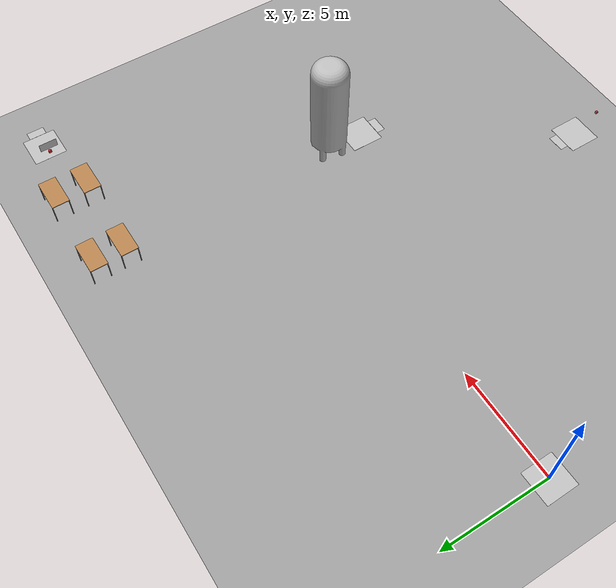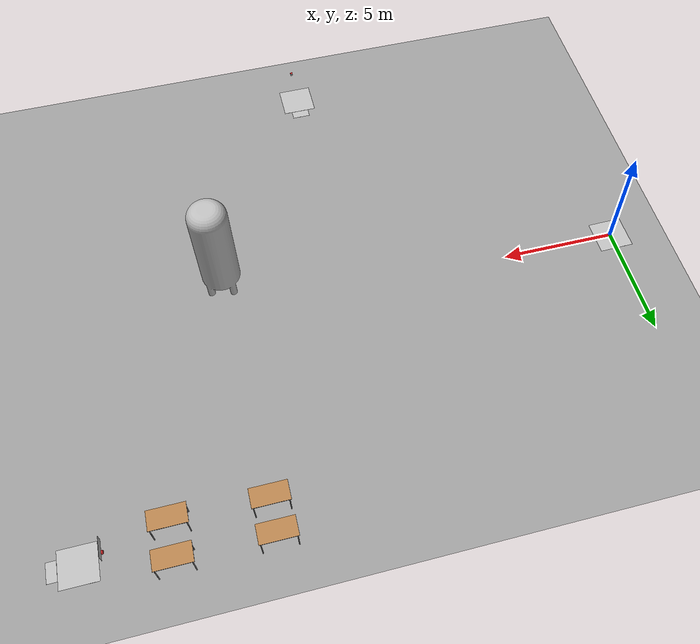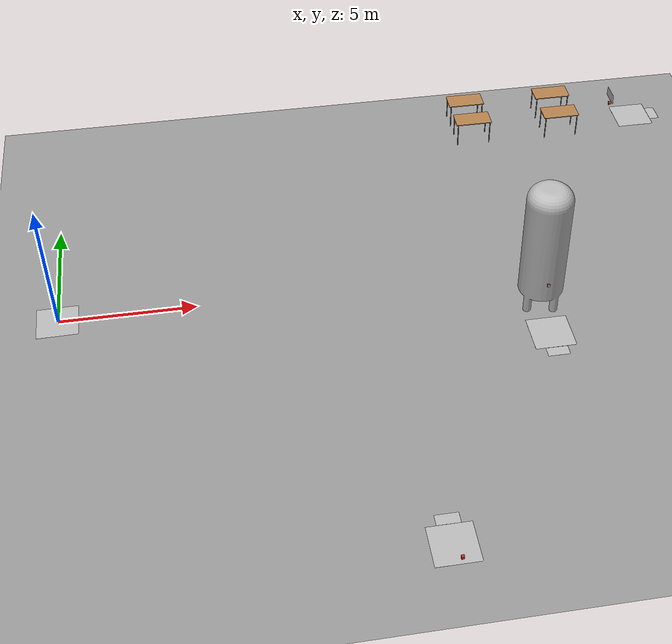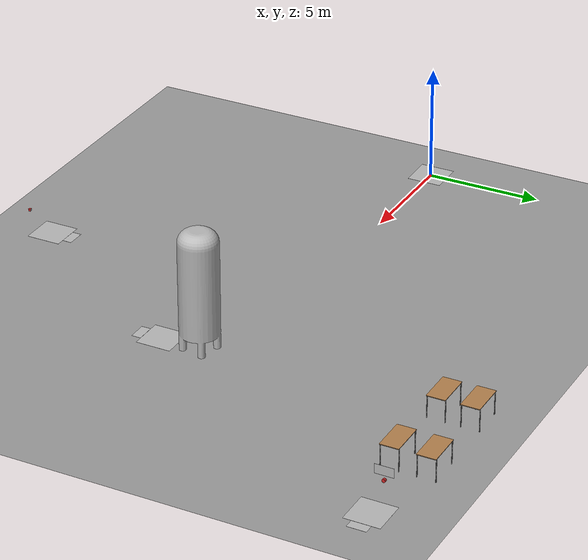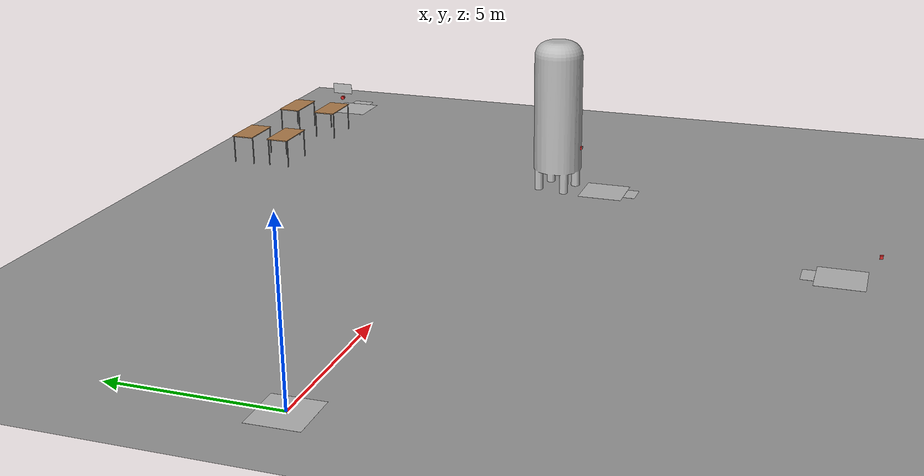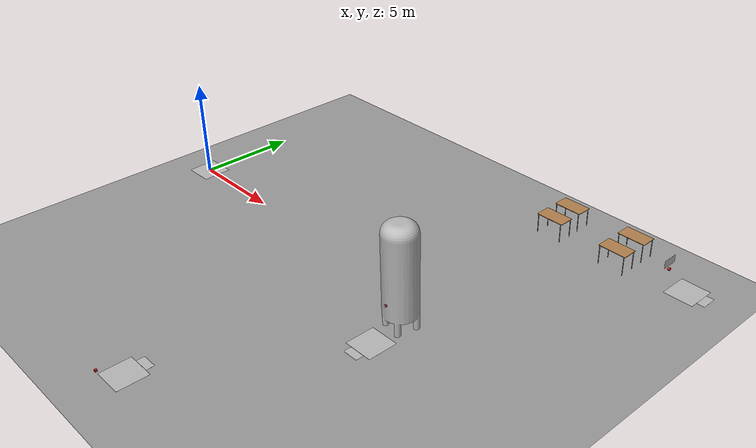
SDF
<sdf version="1.6">
 <world name="default">
  <model name="v1301">
   <link name="v1301">
    <inertial>
     <pose>-0 -2.1428 -8e-06 0 -0 0</pose>
     <mass>9579.6</mass>
     <inertia>
      <ixx>17997.8</ixx>
      <ixy>-4.99284e-13</ixy>
      <ixz>-3.51778e-15</ixz>
      <iyy>3237.68</iyy>
      <iyz>0.189116</iyz>
      <izz>17997.9</izz>
     </inertia>
    </inertial>
    <collision name="v1301_collision">
     <pose>0 0 0 1.5708 -0 0</pose>
     <geometry><mesh><scale>1 1 1</scale><uri>model://v1301/meshes/v1301.STL</uri></mesh></geometry>
    </collision>
    <visual name="v1301_visual">
     <pose>0 0 0 1.5708 -0 0</pose>
     <geometry><mesh><scale>1 1 1</scale><uri>model://v1301/meshes/v1301.STL</uri></mesh></geometry>
    </visual>
    <velocity_decay><linear>0</linear><angular>0</angular></velocity_decay>
   </link>
   <pose>17.4218 -1.74124 0.699995 -1.5708 6e-06 -0.971671</pose>
   <static>1</static>
  </model>
  <model name="ground_plane_2">
   <static>1</static>
   <link name="link">
    <collision name="collision">
     <geometry><plane><normal>0 0 1</normal><size>100 100</size></plane></geometry>
     <surface><friction><ode><mu>100</mu><mu2>50</mu2></ode></friction></surface>
    </collision>
    <visual name="visual">
     <cast_shadows>0</cast_shadows>
     <geometry><plane><normal>0 0 1</normal><size>100 100</size></plane></geometry>
     <material>
      <script><uri>file://media/materials/scripts/gazebo.material</uri><name>Gazebo/Grey</name></script>
     </material>
    </visual>
    <velocity_decay><linear>0</linear><angular>0</angular></velocity_decay>
   </link>
  </model>
  <model name="table">
   <static>1</static>
   <link name="link">
    <collision name="surface">
     <pose>0 0 1 0 -0 0</pose>
     <geometry><box><size>1.5 0.8 0.03</size></box></geometry>
     <surface><friction><ode><mu>0.6</mu><mu2>0.6</mu2></ode></friction></surface>
    </collision>
    <visual name="visual1">
     <pose>0 0 1 0 -0 0</pose>
     <geometry><box><size>1.5 0.8 0.03</size></box></geometry>
     <material>
      <script><uri>file://media/materials/scripts/gazebo.material</uri><name>Gazebo/Wood</name></script>
     </material>
    </visual>
    <collision name="front_left_leg">
     <pose>0.68 0.38 0.5 0 -0 0</pose>
     <geometry><cylinder><radius>0.02</radius><length>1</length></cylinder></geometry>
    </collision>
    <visual name="front_left_leg">
     <pose>0.68 0.38 0.5 0 -0 0</pose>
     <geometry><cylinder><radius>0.02</radius><length>1</length></cylinder></geometry>
     <material>
      <script><uri>file://media/materials/scripts/gazebo.material</uri><name>Gazebo/Grey</name></script>
     </material>
    </visual>
    <collision name="front_right_leg">
     <pose>0.68 -0.38 0.5 0 -0 0</pose>
     <geometry><cylinder><radius>0.02</radius><length>1</length></cylinder></geometry>
    </collision>
    <visual name="front_right_leg">
     <pose>0.68 -0.38 0.5 0 -0 0</pose>
     <geometry><cylinder><radius>0.02</radius><length>1</length></cylinder></geometry>
     <material>
      <script><uri>file://media/materials/scripts/gazebo.material</uri><name>Gazebo/Grey</name></script>
     </material>
    </visual>
    <collision name="back_right_leg">
     <pose>-0.68 -0.38 0.5 0 -0 0</pose>
     <geometry><cylinder><radius>0.02</radius><length>1</length></cylinder></geometry>
    </collision>
    <visual name="back_right_leg">
     <pose>-0.68 -0.38 0.5 0 -0 0</pose>
     <geometry><cylinder><radius>0.02</radius><length>1</length></cylinder></geometry>
     <material>
      <script><uri>file://media/materials/scripts/gazebo.material</uri><name>Gazebo/Grey</name></script>
     </material>
    </visual>
    <collision name="back_left_leg">
     <pose>-0.68 0.38 0.5 0 -0 0</pose>
     <geometry><cylinder><radius>0.02</radius><length>1</length></cylinder></geometry>
    </collision>
    <visual name="back_left_leg">
     <pose>-0.68 0.38 0.5 0 -0 0</pose>
     <geometry><cylinder><radius>0.02</radius><length>1</length></cylinder></geometry>
     <material>
      <script><uri>file://media/materials/scripts/gazebo.material</uri><name>Gazebo/Grey</name></script>
     </material>
    </visual>
    <velocity_decay><linear>0</linear><angular>0</angular></velocity_decay>
   </link>
   <pose>17.2061 10.0068 0 0 -0 0</pose>
  </model>
  <model name="table_0">
   <static>1</static>
   <link name="link">
    <collision name="surface">
     <pose>0 0 1 0 -0 0</pose>
     <geometry><box><size>1.5 0.8 0.03</size></box></geometry>
     <surface><friction><ode><mu>0.6</mu><mu2>0.6</mu2></ode></friction></surface>
    </collision>
    <visual name="visual1">
     <pose>0 0 1 0 -0 0</pose>
     <geometry><box><size>1.5 0.8 0.03</size></box></geometry>
     <material>
      <script><uri>file://media/materials/scripts/gazebo.material</uri><name>Gazebo/Wood</name></script>
     </material>
    </visual>
    <collision name="front_left_leg">
     <pose>0.68 0.38 0.5 0 -0 0</pose>
     <geometry><cylinder><radius>0.02</radius><length>1</length></cylinder></geometry>
    </collision>
    <visual name="front_left_leg">
     <pose>0.68 0.38 0.5 0 -0 0</pose>
     <geometry><cylinder><radius>0.02</radius><length>1</length></cylinder></geometry>
     <material>
      <script><uri>file://media/materials/scripts/gazebo.material</uri><name>Gazebo/Grey</name></script>
     </material>
    </visual>
    <collision name="front_right_leg">
     <pose>0.68 -0.38 0.5 0 -0 0</pose>
     <geometry><cylinder><radius>0.02</radius><length>1</length></cylinder></geometry>
    </collision>
    <visual name="front_right_leg">
     <pose>0.68 -0.38 0.5 0 -0 0</pose>
     <geometry><cylinder><radius>0.02</radius><length>1</length></cylinder></geometry>
     <material>
      <script><uri>file://media/materials/scripts/gazebo.material</uri><name>Gazebo/Grey</name></script>
     </material>
    </visual>
    <collision name="back_right_leg">
     <pose>-0.68 -0.38 0.5 0 -0 0</pose>
     <geometry><cylinder><radius>0.02</radius><length>1</length></cylinder></geometry>
    </collision>
    <visual name="back_right_leg">
     <pose>-0.68 -0.38 0.5 0 -0 0</pose>
     <geometry><cylinder><radius>0.02</radius><length>1</length></cylinder></geometry>
     <material>
      <script><uri>file://media/materials/scripts/gazebo.material</uri><name>Gazebo/Grey</name></script>
     </material>
    </visual>
    <collision name="back_left_leg">
     <pose>-0.68 0.38 0.5 0 -0 0</pose>
     <geometry><cylinder><radius>0.02</radius><length>1</length></cylinder></geometry>
    </collision>
    <visual name="back_left_leg">
     <pose>-0.68 0.38 0.5 0 -0 0</pose>
     <geometry><cylinder><radius>0.02</radius><length>1</length></cylinder></geometry>
     <material>
      <script><uri>file://media/materials/scripts/gazebo.material</uri><name>Gazebo/Grey</name></script>
     </material>
    </visual>
    <velocity_decay><linear>0</linear><angular>0</angular></velocity_decay>
   </link>
   <pose>21 10 0 0 -0 0</pose>
  </model>
  <model name="table_1">
   <static>1</static>
   <link name="link">
    <collision name="surface">
     <pose>0 0 1 0 -0 0</pose>
     <geometry><box><size>1.5 0.8 0.03</size></box></geometry>
     <surface><friction><ode><mu>0.6</mu><mu2>0.6</mu2></ode></friction></surface>
    </collision>
    <visual name="visual1">
     <pose>0 0 1 0 -0 0</pose>
     <geometry><box><size>1.5 0.8 0.03</size></box></geometry>
     <material>
      <script><uri>file://media/materials/scripts/gazebo.material</uri><name>Gazebo/Wood</name></script>
     </material>
    </visual>
    <collision name="front_left_leg">
     <pose>0.68 0.38 0.5 0 -0 0</pose>
     <geometry><cylinder><radius>0.02</radius><length>1</length></cylinder></geometry>
    </collision>
    <visual name="front_left_leg">
     <pose>0.68 0.38 0.5 0 -0 0</pose>
     <geometry><cylinder><radius>0.02</radius><length>1</length></cylinder></geometry>
     <material>
      <script><uri>file://media/materials/scripts/gazebo.material</uri><name>Gazebo/Grey</name></script>
     </material>
    </visual>
    <collision name="front_right_leg">
     <pose>0.68 -0.38 0.5 0 -0 0</pose>
     <geometry><cylinder><radius>0.02</radius><length>1</length></cylinder></geometry>
    </collision>
    <visual name="front_right_leg">
     <pose>0.68 -0.38 0.5 0 -0 0</pose>
     <geometry><cylinder><radius>0.02</radius><length>1</length></cylinder></geometry>
     <material>
      <script><uri>file://media/materials/scripts/gazebo.material</uri><name>Gazebo/Grey</name></script>
     </material>
    </visual>
    <collision name="back_right_leg">
     <pose>-0.68 -0.38 0.5 0 -0 0</pose>
     <geometry><cylinder><radius>0.02</radius><length>1</length></cylinder></geometry>
    </collision>
    <visual name="back_right_leg">
     <pose>-0.68 -0.38 0.5 0 -0 0</pose>
     <geometry><cylinder><radius>0.02</radius><length>1</length></cylinder></geometry>
     <material>
      <script><uri>file://media/materials/scripts/gazebo.material</uri><name>Gazebo/Grey</name></script>
     </material>
    </visual>
    <collision name="back_left_leg">
     <pose>-0.68 0.38 0.5 0 -0 0</pose>
     <geometry><cylinder><radius>0.02</radius><length>1</length></cylinder></geometry>
    </collision>
    <visual name="back_left_leg">
     <pose>-0.68 0.38 0.5 0 -0 0</pose>
     <geometry><cylinder><radius>0.02</radius><length>1</length></cylinder></geometry>
     <material>
      <script><uri>file://media/materials/scripts/gazebo.material</uri><name>Gazebo/Grey</name></script>
     </material>
    </visual>
    <velocity_decay><linear>0</linear><angular>0</angular></velocity_decay>
   </link>
   <pose>21 8.51656 0 0 -0 0</pose>
  </model>
  <model name="table_2">
   <static>1</static>
   <link name="link">
    <collision name="surface">
     <pose>0 0 1 0 -0 0</pose>
     <geometry><box><size>1.5 0.8 0.03</size></box></geometry>
     <surface><friction><ode><mu>0.6</mu><mu2>0.6</mu2></ode></friction></surface>
    </collision>
    <visual name="visual1">
     <pose>0 0 1 0 -0 0</pose>
     <geometry><box><size>1.5 0.8 0.03</size></box></geometry>
     <material>
      <script><uri>file://media/materials/scripts/gazebo.material</uri><name>Gazebo/Wood</name></script>
     </material>
    </visual>
    <collision name="front_left_leg">
     <pose>0.68 0.38 0.5 0 -0 0</pose>
     <geometry><cylinder><radius>0.02</radius><length>1</length></cylinder></geometry>
    </collision>
    <visual name="front_left_leg">
     <pose>0.68 0.38 0.5 0 -0 0</pose>
     <geometry><cylinder><radius>0.02</radius><length>1</length></cylinder></geometry>
     <material>
      <script><uri>file://media/materials/scripts/gazebo.material</uri><name>Gazebo/Grey</name></script>
     </material>
    </visual>
    <collision name="front_right_leg">
     <pose>0.68 -0.38 0.5 0 -0 0</pose>
     <geometry><cylinder><radius>0.02</radius><length>1</length></cylinder></geometry>
    </collision>
    <visual name="front_right_leg">
     <pose>0.68 -0.38 0.5 0 -0 0</pose>
     <geometry><cylinder><radius>0.02</radius><length>1</length></cylinder></geometry>
     <material>
      <script><uri>file://media/materials/scripts/gazebo.material</uri><name>Gazebo/Grey</name></script>
     </material>
    </visual>
    <collision name="back_right_leg">
     <pose>-0.68 -0.38 0.5 0 -0 0</pose>
     <geometry><cylinder><radius>0.02</radius><length>1</length></cylinder></geometry>
    </collision>
    <visual name="back_right_leg">
     <pose>-0.68 -0.38 0.5 0 -0 0</pose>
     <geometry><cylinder><radius>0.02</radius><length>1</length></cylinder></geometry>
     <material>
      <script><uri>file://media/materials/scripts/gazebo.material</uri><name>Gazebo/Grey</name></script>
     </material>
    </visual>
    <collision name="back_left_leg">
     <pose>-0.68 0.38 0.5 0 -0 0</pose>
     <geometry><cylinder><radius>0.02</radius><length>1</length></cylinder></geometry>
    </collision>
    <visual name="back_left_leg">
     <pose>-0.68 0.38 0.5 0 -0 0</pose>
     <geometry><cylinder><radius>0.02</radius><length>1</length></cylinder></geometry>
     <material>
      <script><uri>file://media/materials/scripts/gazebo.material</uri><name>Gazebo/Grey</name></script>
     </material>
    </visual>
    <velocity_decay><linear>0</linear><angular>0</angular></velocity_decay>
   </link>
   <pose>17.2213 8.61105 0 0 -0 0</pose>
  </model>
  <model name="yibiao11">
   <link name="link">
    <pose>0 0.05 0.05 0 -0 0</pose>
    <inertial>
     <mass>0.001</mass>
     <inertia><ixx>0.00058</ixx><ixy>0</ixy><ixz>0</ixz><iyy>0.00058</iyy><iyz>0</iyz><izz>0.00019</izz></inertia>
    </inertial>
    <collision name="collision"><geometry><box><size>0.1 0.001 0.1</size></box></geometry></collision>
    <visual name="visual">
     <geometry><box><size>0.1 0.001 0.1</size></box></geometry>
     <material>
      <script>
       <uri>model://yibiao11/materials/scripts</uri>
       <uri>model://yibiao11/materials/textures</uri>
       <name>yibiao11/Diffuse</name>
      </script>
     </material>
    </visual>
   </link>
   <link name="base">
    <pose>0 0 0.05 0 -0 0</pose>
    <inertial>
     <mass>0.39</mass>
     <inertia><ixx>0.00058</ixx><ixy>0</ixy><ixz>0</ixz><iyy>0.00058</iyy><iyz>0</iyz><izz>0.00019</izz></inertia>
    </inertial>
    <collision name="collision"><geometry><box><size>0.1 0.1 0.1</size></box></geometry></collision>
    <visual name="visual">
     <geometry><box><size>0.1 0.1 0.1</size></box></geometry>
     <material>
      <script><uri>file://media/materials/scripts/gazebo.material</uri><name>Gazebo/Red</name></script>
     </material>
    </visual>
   </link>
   <pose>12.0592 -12.9038 0.767058 0 -2e-06 0</pose>
   <static>1</static>
  </model>
  <model name="yibiao22">
   <link name="link">
    <pose>0 0.05 0.05 0 -0 0</pose>
    <inertial>
     <mass>0.001</mass>
     <inertia><ixx>0.00058</ixx><ixy>0</ixy><ixz>0</ixz><iyy>0.00058</iyy><iyz>0</iyz><izz>0.00019</izz></inertia>
    </inertial>
    <collision name="collision"><geometry><box><size>0.1 0.001 0.1</size></box></geometry></collision>
    <visual name="visual">
     <geometry><box><size>0.1 0.001 0.1</size></box></geometry>
     <material>
      <script>
       <uri>model://yibiao22/materials/scripts</uri>
       <uri>model://yibiao22/materials/textures</uri>
       <name>yibiao22/Diffuse</name>
      </script>
     </material>
    </visual>
   </link>
   <link name="base">
    <pose>0 0 0.05 0 -0 0</pose>
    <inertial>
     <mass>0.39</mass>
     <inertia><ixx>0.00058</ixx><ixy>0</ixy><ixz>0</ixz><iyy>0.00058</iyy><iyz>0</iyz><izz>0.00019</izz></inertia>
    </inertial>
    <collision name="collision"><geometry><box><size>0.1 0.1 0.1</size></box></geometry></collision>
    <visual name="visual">
     <geometry><box><size>0.1 0.1 0.1</size></box></geometry>
     <material>
      <script><uri>file://media/materials/scripts/gazebo.material</uri><name>Gazebo/Red</name></script>
     </material>
    </visual>
   </link>
   <pose>17.4218 -2.57301 1.45361 -0 2e-06 3.1415</pose>
   <static>1</static>
  </model>
  <model name="dibiao">
   <link name="link">
    <pose>0 0 0.0005 0 -0 0</pose>
    <inertial>
     <mass>1</mass>
     <inertia><ixx>0.00058</ixx><ixy>0</ixy><ixz>0</ixz><iyy>0.00058</iyy><iyz>0</iyz><izz>0.00019</izz></inertia>
    </inertial>
    <visual name="visual">
     <geometry><box><size>1.5 1.5 0.001</size></box></geometry>
     <material>
      <script>
       <uri>model://dibiao/materials/scripts</uri>
       <uri>model://dibiao/materials/textures</uri>
       <name>dibiao/Diffuse</name>
      </script>
     </material>
    </visual>
   </link>
   <pose>17.4218 -3.43635 0 0 -0 1.57</pose>
   <static>1</static>
  </model>
  <model name="dibiao_3">
   <link name="link">
    <pose>0 0 0.0005 0 -0 0</pose>
    <inertial>
     <mass>1</mass>
     <inertia><ixx>0.00058</ixx><ixy>0</ixy><ixz>0</ixz><iyy>0.00058</iyy><iyz>0</iyz><izz>0.00019</izz></inertia>
    </inertial>
    <visual name="visual">
     <geometry><box><size>1.5 1.5 0.001</size></box></geometry>
     <material>
      <script>
       <uri>model://dibiao/materials/scripts</uri>
       <uri>model://dibiao/materials/textures</uri>
       <name>dibiao/Diffuse</name>
      </script>
     </material>
    </visual>
   </link>
   <pose>12.0589 -11.8376 0 0 0 -1.57</pose>
   <static>1</static>
  </model>
  <model name="dibiao_1">
   <link name="link">
    <pose>0 0 0.0005 0 -0 0</pose>
    <inertial>
     <mass>1</mass>
     <inertia><ixx>0.00058</ixx><ixy>0</ixy><ixz>0</ixz><iyy>0.00058</iyy><iyz>0</iyz><izz>0.00019</izz></inertia>
    </inertial>
    <visual name="visual">
     <geometry><box><size>1.5 1.5 0.001</size></box></geometry>
     <material>
      <script>
       <uri>model://dibiao/materials/scripts</uri>
       <uri>model://dibiao/materials/textures</uri>
       <name>dibiao/Diffuse</name>
      </script>
     </material>
    </visual>
   </link>
   <pose>24.5 9.15568 0 0 -0 3.14</pose>
   <static>1</static>
  </model>
  <model name="button_red">
   <link name="link">
    <pose>0 0 0.05 0 -0 0</pose>
    <inertial>
     <mass>0.39</mass>
     <inertia><ixx>0.00058</ixx><ixy>0</ixy><ixz>0</ixz><iyy>0.00058</iyy><iyz>0</iyz><izz>0.00019</izz></inertia>
    </inertial>
    <visual name="visual">
     <geometry><cylinder><radius>0.075</radius><length>0.1</length></cylinder></geometry>
     <material>
      <script><uri>file://media/materials/scripts/gazebo.material</uri><name>Gazebo/Red</name></script>
     </material>
    </visual>
   </link>
   <pose>23.5 9.15443 0.750001 -1.57079 5.4e-05 1.54735</pose>
   <static>1</static>
  </model>
  <model name="dibiao_2">
   <link name="link">
    <pose>0 0 0.0005 0 -0 0</pose>
    <inertial>
     <mass>1</mass>
     <inertia><ixx>0.00058</ixx><ixy>0</ixy><ixz>0</ixz><iyy>0.00058</iyy><iyz>0</iyz><izz>0.00019</izz></inertia>
    </inertial>
    <visual name="visual">
     <geometry><box><size>1.5 1.5 0.001</size></box></geometry>
     <material>
      <script>
       <uri>model://dibiao/materials/scripts</uri>
       <uri>model://dibiao/materials/textures</uri>
       <name>dibiao/Diffuse</name>
      </script>
     </material>
    </visual>
   </link>
   <pose>-0.034978 -0.000908 0 0 -0 0.014045</pose>
   <static>1</static>
  </model>
  <model name="jingbao">
   <link name="link">
    <pose>0 0 0.1 0 -0 0</pose>
    <inertial>
     <mass>1</mass>
     <inertia><ixx>0.00058</ixx><ixy>0</ixy><ixz>0</ixz><iyy>0.00058</iyy><iyz>0</iyz><izz>0.00019</izz></inertia>
    </inertial>
    <visual name="visual">
     <geometry><box><size>0.001 0.8 0.4</size></box></geometry>
     <material>
      <script>
       <uri>model://jingbao/materials/scripts</uri>
       <uri>model://jingbao/materials/textures</uri>
       <name>jingbao/Diffuse</name>
      </script>
     </material>
    </visual>
   </link>
   <pose>23.4348 9.14142 1.04266 0 -0 0</pose>
   <static>1</static>
  </model>
  <model name="buzhou1">
   <link name="link">
    <pose>0 0 0.1 0 -0 0</pose>
    <inertial>
     <mass>1</mass>
     <inertia><ixx>0.00058</ixx><ixy>0</ixy><ixz>0</ixz><iyy>0.00058</iyy><iyz>0</iyz><izz>0.00019</izz></inertia>
    </inertial>
    <visual name="visual">
     <geometry><box><size>0.001 0.8 0.4</size></box></geometry>
     <material>
      <script>
       <uri>model://buzhou1/materials/scripts</uri>
       <uri>model://buzhou1/materials/textures</uri>
       <name>buzhou1/Diffuse</name>
      </script>
     </material>
    </visual>
   </link>
   <pose>12.0589 -10.7846 0 1.57081 -1.57 -0.002501</pose>
   <static>1</static>
  </model>
  <model name="buzhou2">
   <link name="link">
    <pose>0 0 0.1 0 -0 0</pose>
    <inertial>
     <mass>1</mass>
     <inertia><ixx>0.00058</ixx><ixy>0</ixy><ixz>0</ixz><iyy>0.00058</iyy><iyz>0</iyz><izz>0.00019</izz></inertia>
    </inertial>
    <visual name="visual">
     <geometry><box><size>0.001 0.8 0.4</size></box></geometry>
     <material>
      <script>
       <uri>model://buzhou2/materials/scripts</uri>
       <uri>model://buzhou2/materials/textures</uri>
       <name>buzhou2/Diffuse</name>
      </script>
     </material>
    </visual>
   </link>
   <pose>17.4214 -4.49374 0 -1.57036 -1.57 0.000361</pose>
   <static>1</static>
  </model>
  <model name="buzhou3">
   <link name="link">
    <pose>0 0 0.1 0 -0 0</pose>
    <inertial>
     <mass>1</mass>
     <inertia><ixx>0.00058</ixx><ixy>0</ixy><ixz>0</ixz><iyy>0.00058</iyy><iyz>0</iyz><izz>0.00019</izz></inertia>
    </inertial>
    <visual name="visual">
     <geometry><box><size>0.001 0.8 0.4</size></box></geometry>
     <material>
      <script>
       <uri>model://buzhou3/materials/scripts</uri>
       <uri>model://buzhou3/materials/textures</uri>
       <name>buzhou3/Diffuse</name>
      </script>
     </material>
    </visual>
   </link>
   <pose>25.5545 9.15568 5.5e-05 0 -1.57 0</pose>
   <static>1</static>
  </model>
 </world>
</sdf>
